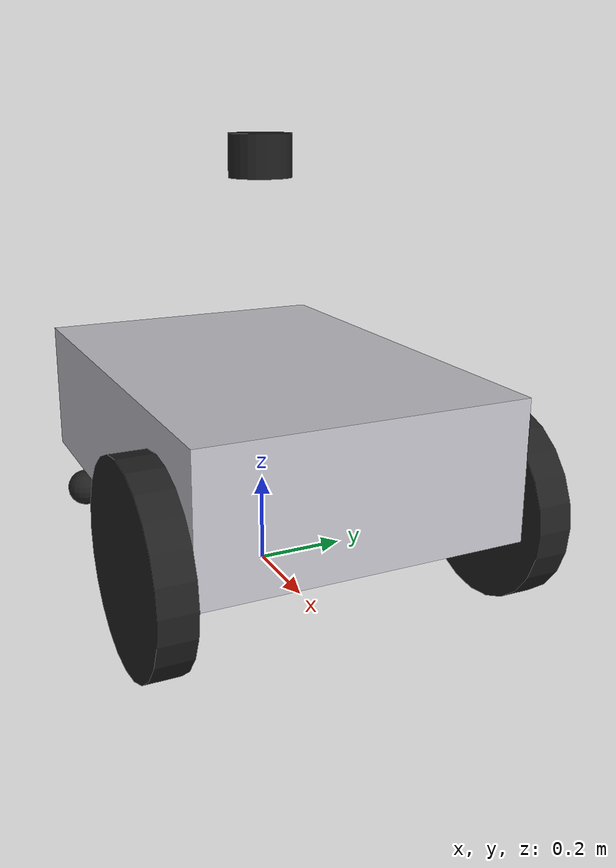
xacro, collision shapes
<?xml version="1.0" ?>
<robot name="donar_robot" xmlns:xacro="http://www.ros.org/wiki/xacro">
  <xacro:arg name="robot_name" default="donar_robot"/>
  <xacro:arg name="frame_prefix" default=""/>
  <xacro:property name="robot_name" value="$(arg robot_name)"/>
  <xacro:property name="frame_prefix" value="$(arg frame_prefix)"/>

<xacro:include filename="$(find donar_robot_description)/urdf/materials.xacro"/>

<!-- BASE FOOTPRINT -->
<link name="${frame_prefix}base_footprint"/>

<joint name="${frame_prefix}base_footprint_joint" type="fixed">
  <origin xyz="0 0 0.15" rpy="0 0 0"/>
  <parent link="${frame_prefix}base_footprint"/>
  <child link="${frame_prefix}base_link"/>
</joint>

<!-- BASE LINK -->
<link name="${frame_prefix}base_link">
  <inertial>
    <origin xyz="0.00019643943716737475 2.2407483791136845e-05 0.2893670205310124" rpy="0 0 0"/>
    <mass value="118.125"/>
    <inertia ixx="34.36262240625" iyy="58.34578078125" izz="63.99484734375" ixy="-0.000334125" iyz="0.00184528125" ixz="-0.0682374375"/>
  </inertial>
  <visual>
    <origin xyz="0 0 0" rpy="0 0 0"/>
    <geometry>
      <mesh filename="package://donar_robot_description/meshes/base_link.stl" scale="0.0015 0.0015 0.0015"/>
    </geometry>
    <material name="silver"/>
  </visual>
  <visual>
    <origin xyz="0 0 0.66" rpy="0 0 0"/>
    <geometry>
      <box size="0.48 0.3 0.12"/>
    </geometry>
    <material name="visibility_orange">
      <color rgba="1.0 0.35 0.0 1.0"/>
    </material>
  </visual>
  <collision>
    <origin xyz="0 0 0.18" rpy="0 0 0"/>
    <geometry>
      <box size="0.99 0.69 0.3"/>
    </geometry>
  </collision>
</link>

<!-- LIDAR -->
<link name="${frame_prefix}lidar_link">
  <inertial>
    <origin xyz="0 0 0" rpy="0 0 0"/>
    <mass value="0.84375"/>
    <inertia ixx="0.003796875" iyy="0.003796875" izz="0.003796875" ixy="0.0" iyz="0.0" ixz="0.0"/>
  </inertial>
  <visual>
    <origin xyz="0 0 0" rpy="0 0 0"/>
    <geometry>
      <cylinder radius="0.0675" length="0.09"/>
    </geometry>
    <material name="black"/>
  </visual>
  <collision>
    <origin xyz="0 0 0" rpy="0 0 0"/>
    <geometry>
      <cylinder radius="0.0675" length="0.09"/>
    </geometry>
  </collision>
</link>

<joint name="${frame_prefix}lidar_joint" type="fixed">
  <origin xyz="0 0 0.765" rpy="0 0 0"/>
  <parent link="${frame_prefix}base_link"/>
  <child link="${frame_prefix}lidar_link"/>
</joint>

<!-- RIGHT WHEEL -->
<link name="${frame_prefix}right_wheel_1">
  <inertial>
    <origin xyz="0 0 0" rpy="0 0 0"/>
    <mass value="6.75"/>
    <inertia ixx="0.12360346875" iyy="0.2371831875" izz="0.12360346875" ixy="0.0" iyz="0.0" ixz="0.0"/>
  </inertial>
  <visual>
    <origin xyz="-0.3315 0.39 -0.06" rpy="0 0 0"/>
    <geometry>
      <mesh filename="package://donar_robot_description/meshes/right_wheel_1.stl" scale="0.0015 0.0015 0.0015"/>
    </geometry>
    <material name="black"/>
  </visual>
  <collision>
    <origin xyz="0 0 0" rpy="1.57079632679 0 0"/>
    <geometry>
      <cylinder radius="0.21" length="0.075"/>
    </geometry>
  </collision>
</link>

<gazebo reference="${frame_prefix}right_wheel_1">
  <mu1>1.8</mu1>
  <mu2>1.8</mu2>
  <kp>1000000.0</kp>
  <kd>100.0</kd>
</gazebo>

<joint name="${frame_prefix}right_wheel_joint" type="continuous">
  <origin xyz="0.3315 -0.39 0.06" rpy="0 0 0"/>
  <parent link="${frame_prefix}base_link"/>
  <child link="${frame_prefix}right_wheel_1"/>
  <axis xyz="0.0 1.0 0.0"/>
</joint>

<!-- LEFT WHEEL -->
<link name="${frame_prefix}left_wheel_1">
  <inertial>
    <origin xyz="0 0 0" rpy="0 0 0"/>
    <mass value="6.75"/>
    <inertia ixx="0.12360346875" iyy="0.2371831875" izz="0.12360346875" ixy="0.0" iyz="0.0" ixz="0.0"/>
  </inertial>
  <visual>
    <origin xyz="-0.3315 -0.39 -0.06" rpy="0 0 0"/>
    <geometry>
      <mesh filename="package://donar_robot_description/meshes/left_wheel_1.stl" scale="0.0015 0.0015 0.0015"/>
    </geometry>
    <material name="black"/>
  </visual>
  <collision>
    <origin xyz="0 0 0" rpy="1.57079632679 0 0"/>
    <geometry>
      <cylinder radius="0.21" length="0.075"/>
    </geometry>
  </collision>
</link>

<gazebo reference="${frame_prefix}left_wheel_1">
  <mu1>1.8</mu1>
  <mu2>1.8</mu2>
  <kp>1000000.0</kp>
  <kd>100.0</kd>
</gazebo>

<joint name="${frame_prefix}left_wheel_joint" type="continuous">
  <origin xyz="0.3315 0.39 0.06" rpy="0 0 0"/>
  <parent link="${frame_prefix}base_link"/>
  <child link="${frame_prefix}left_wheel_1"/>
  <axis xyz="0.0 1.0 0.0"/>
</joint>

<!-- LEFT CASTER WHEEL -->
<link name="${frame_prefix}left_caster_wheel_1">
  <inertial>
    <origin xyz="0 0 -0.05836956521739113" rpy="0 0 0"/>
    <mass value="1.3786565201013452"/>
    <inertia ixx="0.00280209375" iyy="0.00280209375" izz="0.0023085" ixy="0" iyz="0" ixz="0"/>
  </inertial>
  <visual>
    <!-- Keep a tiny visual-only floor clearance so the caster does not look
         sunken into the warehouse pad while leaving the contact geometry
         unchanged. -->
    <origin xyz="0 0 -0.003" rpy="0 0 0"/>
    <geometry>
      <sphere radius="0.12"/>
    </geometry>
    <material name="black"/>
  </visual>
  <collision>
    <origin xyz="0 0 -0.075" rpy="0 0 0"/>
    <geometry>
      <sphere radius="0.045"/>
    </geometry>
  </collision>
</link>

<!-- LEFT CASTER JOINT -->
<joint name="${frame_prefix}left_caster_joint" type="fixed">
  <origin xyz="-0.456 0.3 -0.015" rpy="0 0 0"/>
  <parent link="${frame_prefix}base_link"/>
  <child link="${frame_prefix}left_caster_wheel_1"/>
</joint>
<!-- Add Gazebo friction properties -->
<gazebo reference="${frame_prefix}left_caster_wheel_1">
  <!-- Keep the fixed caster spheres fairly low-friction so turns stay
       possible, but not so low that the robot skates sideways under load. -->
  <mu1>0.12</mu1>
  <mu2>0.12</mu2>
  <kp>1000000.0</kp>
  <kd>100.0</kd>
</gazebo>

<!-- RIGHT CASTER WHEEL -->
<link name="${frame_prefix}right_caster_wheel_1">
  <inertial>
    <origin xyz="0 0 -0.05836956521739113" rpy="0 0 0"/>
    <mass value="1.3786565201013452"/>
    <inertia ixx="0.00280209375" iyy="0.00280209375" izz="0.0023085" ixy="0" iyz="0" ixz="0"/>
  </inertial>
  <visual>
    <origin xyz="0 0 -0.003" rpy="0 0 0"/>
    <geometry>
      <sphere radius="0.12"/>
    </geometry>
    <material name="black"/>
  </visual>
  <collision>
    <origin xyz="0 0 -0.075" rpy="0 0 0"/>
    <geometry>
      <sphere radius="0.045"/>
    </geometry>
  </collision>
</link>

<!-- RIGHT CASTER JOINT -->
<joint name="${frame_prefix}right_caster_joint" type="fixed">
  <origin xyz="-0.456 -0.3 -0.015" rpy="0 0 0"/>
  <parent link="${frame_prefix}base_link"/>
  <child link="${frame_prefix}right_caster_wheel_1"/>
</joint>

<gazebo reference="${frame_prefix}right_caster_wheel_1">
  <!-- Match the left caster contact model to reduce lateral drift. -->
  <mu1>0.12</mu1>
  <mu2>0.12</mu2>
  <kp>1000000.0</kp>
  <kd>100.0</kd>
</gazebo>

<gazebo reference="${frame_prefix}lidar_link">
  <!-- Keep a real 3D lidar for the project objective. Nav2 will consume a
       derived 2D scan generated from the point cloud in the launch file. -->
  <sensor type="gpu_lidar" name="front_lidar">
    <pose>0 0 0 0 0 0</pose>
    <topic>/${robot_name}/lidar</topic>
    <always_on>true</always_on>
    <update_rate>15</update_rate>
    <visualize>true</visualize>
    <lidar>
      <scan>
        <horizontal>
          <samples>1024</samples>
          <resolution>1</resolution>
          <min_angle>-3.14159</min_angle>
          <max_angle>3.14159</max_angle>
        </horizontal>
        <vertical>
          <samples>16</samples>
          <resolution>1</resolution>
          <min_angle>-0.261799</min_angle>
          <max_angle>0.261799</max_angle>
        </vertical>
      </scan>
      <range>
        <min>0.12</min>
        <max>10.0</max>
        <resolution>0.01</resolution>
      </range>
      <noise>
        <type>gaussian</type>
        <mean>0.0</mean>
        <stddev>0.01</stddev>
      </noise>
    </lidar>
  </sensor>
</gazebo>

<gazebo>
  <plugin
    filename="libignition-gazebo6-diff-drive-system.so"
    name="ignition::gazebo::systems::DiffDrive">

    <left_joint>${frame_prefix}left_wheel_joint</left_joint>
    <right_joint>${frame_prefix}right_wheel_joint</right_joint>

    <wheel_separation>0.78</wheel_separation>
    <wheel_radius>0.21</wheel_radius>
    <max_linear_acceleration>0.9</max_linear_acceleration>
    <min_linear_acceleration>-0.9</min_linear_acceleration>
    <max_angular_acceleration>0.9</max_angular_acceleration>
    <min_angular_acceleration>-0.9</min_angular_acceleration>
    <max_linear_velocity>0.5</max_linear_velocity>
    <min_linear_velocity>-0.25</min_linear_velocity>
    <max_angular_velocity>0.55</max_angular_velocity>
    <min_angular_velocity>-0.55</min_angular_velocity>

    <topic>/${robot_name}/cmd_vel</topic>
    <odom_topic>/${robot_name}/odometry</odom_topic>
    <tf_topic>/tf</tf_topic>
    <frame_id>${frame_prefix}odom</frame_id>
    <child_frame_id>${frame_prefix}base_footprint</child_frame_id>
    <odom_publish_frequency>10</odom_publish_frequency>

  </plugin>
</gazebo>
</robot>
